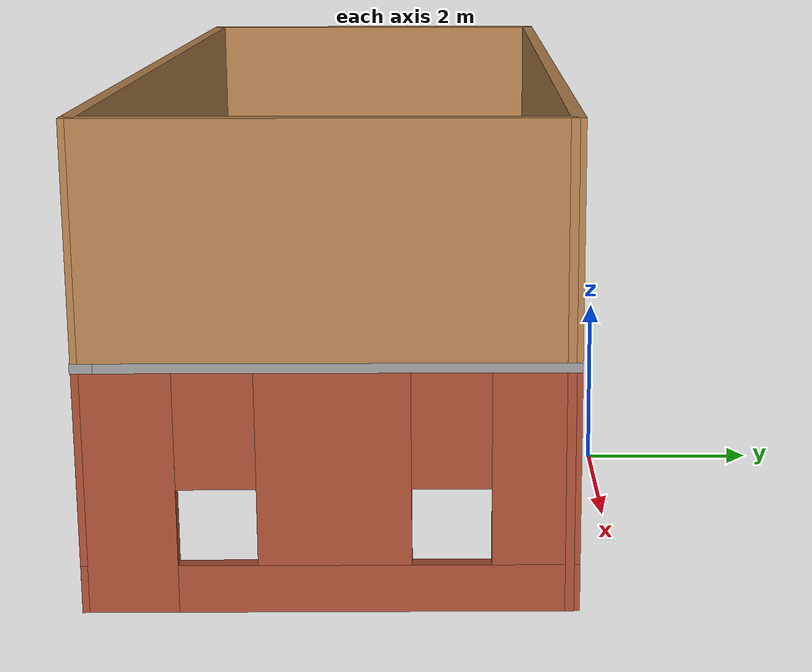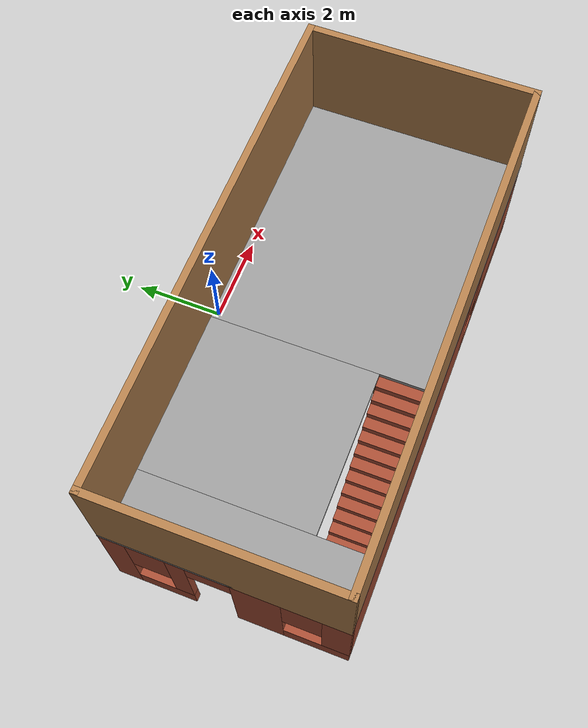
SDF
<?xml version='1.0'?>
<sdf version='1.6'>
  <model name='house'>
    <pose frame=''>-0.799965 -2.73753 0 0 -0 0</pose>
    <link name='Floor_1'>
      <pose frame=''>0 -0.232465 2.5 0 -0 0</pose>
      <visual name='Floor_1_Visual_0'>
        <pose frame=''>-4.72253 0 0.05 0 -0 0</pose>
        <geometry>
          <box>
            <size>1.425 5.01014 0.1</size>
          </box>
        </geometry>
        <material>
          <script>
            <uri>file://media/materials/scripts/gazebo.material</uri>
            <name>Gazebo/Grey</name>
          </script>
          <ambient>1 1 1 1</ambient>
        </material>
        <meta>
          <layer>1</layer>
        </meta>
      </visual>
      <collision name='Floor_1_Collision_0'>
        <geometry>
          <box>
            <size>1.425 5.01014 0.1</size>
          </box>
        </geometry>
        <pose frame=''>-4.72253 0 0.05 0 -0 0</pose>
      </collision>
      <visual name='Floor_1_Visual_1'>
        <pose frame=''>0.7125 -2.39254 0.05 0 -0 0</pose>
        <geometry>
          <box>
            <size>9.44507 0.22507 0.1</size>
          </box>
        </geometry>
        <material>
          <script>
            <uri>file://media/materials/scripts/gazebo.material</uri>
            <name>Gazebo/Grey</name>
          </script>
          <ambient>1 1 1 1</ambient>
        </material>
        <meta>
          <layer>1</layer>
        </meta>
      </visual>
      <collision name='Floor_1_Collision_1'>
        <geometry>
          <box>
            <size>9.44507 0.22507 0.1</size>
          </box>
        </geometry>
        <pose frame=''>0.7125 -2.39254 0.05 0 -0 0</pose>
      </collision>
      <visual name='Floor_1_Visual_2'>
        <pose frame=''>2.4625 0.112535 0.05 0 -0 0</pose>
        <geometry>
          <box>
            <size>5.94507 4.78507 0.1</size>
          </box>
        </geometry>
        <material>
          <script>
            <uri>file://media/materials/scripts/gazebo.material</uri>
            <name>Gazebo/Grey</name>
          </script>
          <ambient>1 1 1 1</ambient>
        </material>
        <meta>
          <layer>1</layer>
        </meta>
      </visual>
      <collision name='Floor_1_Collision_2'>
        <geometry>
          <box>
            <size>5.94507 4.78507 0.1</size>
          </box>
        </geometry>
        <pose frame=''>2.4625 0.112535 0.05 0 -0 0</pose>
      </collision>
      <visual name='Floor_1_Visual_3'>
        <pose frame=''>-2.26003 0.612535 0.05 0 -0 0</pose>
        <geometry>
          <box>
            <size>3.5 3.78507 0.1</size>
          </box>
        </geometry>
        <material>
          <script>
            <uri>file://media/materials/scripts/gazebo.material</uri>
            <name>Gazebo/Grey</name>
          </script>
          <ambient>1 1 1 1</ambient>
        </material>
        <meta>
          <layer>1</layer>
        </meta>
      </visual>
      <collision name='Floor_1_Collision_3'>
        <geometry>
          <box>
            <size>3.5 3.78507 0.1</size>
          </box>
        </geometry>
        <pose frame=''>-2.26003 0.612535 0.05 0 -0 0</pose>
      </collision>
    </link>
    <link name='Stairs_1'>
      <visual name='Stairs_1_Visual_0'>
        <pose frame=''>-3.89337 -2.01247 0.083333 0 -0 1.5708</pose>
        <geometry>
          <box>
            <size>1 0.233333 0.166667</size>
          </box>
        </geometry>
        <material>
          <script>
            <uri>file://media/materials/scripts/gazebo.material</uri>
            <name>Gazebo/Bricks</name>
          </script>
          <ambient>1 1 1 1</ambient>
        </material>
        <meta>
          <layer>0</layer>
        </meta>
      </visual>
      <collision name='Stairs_1_Collision_0'>
        <geometry>
          <box>
            <size>1 0.233333 0.166667</size>
          </box>
        </geometry>
        <pose frame=''>-3.89337 -2.01247 0.083333 0 -0 1.5708</pose>
      </collision>
      <visual name='Stairs_1_Visual_1'>
        <pose frame=''>-3.66004 -2.01247 0.25 0 -0 1.5708</pose>
        <geometry>
          <box>
            <size>1 0.233333 0.166667</size>
          </box>
        </geometry>
        <material>
          <script>
            <uri>file://media/materials/scripts/gazebo.material</uri>
            <name>Gazebo/Bricks</name>
          </script>
          <ambient>1 1 1 1</ambient>
        </material>
        <meta>
          <layer>0</layer>
        </meta>
      </visual>
      <collision name='Stairs_1_Collision_1'>
        <geometry>
          <box>
            <size>1 0.233333 0.166667</size>
          </box>
        </geometry>
        <pose frame=''>-3.66004 -2.01247 0.25 0 -0 1.5708</pose>
      </collision>
      <visual name='Stairs_1_Visual_2'>
        <pose frame=''>-3.4267 -2.01247 0.416667 0 -0 1.5708</pose>
        <geometry>
          <box>
            <size>1 0.233333 0.166667</size>
          </box>
        </geometry>
        <material>
          <script>
            <uri>file://media/materials/scripts/gazebo.material</uri>
            <name>Gazebo/Bricks</name>
          </script>
          <ambient>1 1 1 1</ambient>
        </material>
        <meta>
          <layer>0</layer>
        </meta>
      </visual>
      <collision name='Stairs_1_Collision_2'>
        <geometry>
          <box>
            <size>1 0.233333 0.166667</size>
          </box>
        </geometry>
        <pose frame=''>-3.4267 -2.01247 0.416667 0 -0 1.5708</pose>
      </collision>
      <visual name='Stairs_1_Visual_3'>
        <pose frame=''>-3.19337 -2.01247 0.583333 0 -0 1.5708</pose>
        <geometry>
          <box>
            <size>1 0.233333 0.166667</size>
          </box>
        </geometry>
        <material>
          <script>
            <uri>file://media/materials/scripts/gazebo.material</uri>
            <name>Gazebo/Bricks</name>
          </script>
          <ambient>1 1 1 1</ambient>
        </material>
        <meta>
          <layer>0</layer>
        </meta>
      </visual>
      <collision name='Stairs_1_Collision_3'>
        <geometry>
          <box>
            <size>1 0.233333 0.166667</size>
          </box>
        </geometry>
        <pose frame=''>-3.19337 -2.01247 0.583333 0 -0 1.5708</pose>
      </collision>
      <visual name='Stairs_1_Visual_4'>
        <pose frame=''>-2.96003 -2.01247 0.75 0 -0 1.5708</pose>
        <geometry>
          <box>
            <size>1 0.233333 0.166667</size>
          </box>
        </geometry>
        <material>
          <script>
            <uri>file://media/materials/scripts/gazebo.material</uri>
            <name>Gazebo/Bricks</name>
          </script>
          <ambient>1 1 1 1</ambient>
        </material>
        <meta>
          <layer>0</layer>
        </meta>
      </visual>
      <collision name='Stairs_1_Collision_4'>
        <geometry>
          <box>
            <size>1 0.233333 0.166667</size>
          </box>
        </geometry>
        <pose frame=''>-2.96003 -2.01247 0.75 0 -0 1.5708</pose>
      </collision>
      <visual name='Stairs_1_Visual_5'>
        <pose frame=''>-2.7267 -2.01247 0.916667 0 -0 1.5708</pose>
        <geometry>
          <box>
            <size>1 0.233333 0.166667</size>
          </box>
        </geometry>
        <material>
          <script>
            <uri>file://media/materials/scripts/gazebo.material</uri>
            <name>Gazebo/Bricks</name>
          </script>
          <ambient>1 1 1 1</ambient>
        </material>
        <meta>
          <layer>0</layer>
        </meta>
      </visual>
      <collision name='Stairs_1_Collision_5'>
        <geometry>
          <box>
            <size>1 0.233333 0.166667</size>
          </box>
        </geometry>
        <pose frame=''>-2.7267 -2.01247 0.916667 0 -0 1.5708</pose>
      </collision>
      <visual name='Stairs_1_Visual_6'>
        <pose frame=''>-2.49337 -2.01247 1.08333 0 -0 1.5708</pose>
        <geometry>
          <box>
            <size>1 0.233333 0.166667</size>
          </box>
        </geometry>
        <material>
          <script>
            <uri>file://media/materials/scripts/gazebo.material</uri>
            <name>Gazebo/Bricks</name>
          </script>
          <ambient>1 1 1 1</ambient>
        </material>
        <meta>
          <layer>0</layer>
        </meta>
      </visual>
      <collision name='Stairs_1_Collision_6'>
        <geometry>
          <box>
            <size>1 0.233333 0.166667</size>
          </box>
        </geometry>
        <pose frame=''>-2.49337 -2.01247 1.08333 0 -0 1.5708</pose>
      </collision>
      <visual name='Stairs_1_Visual_7'>
        <pose frame=''>-2.26003 -2.01247 1.25 0 -0 1.5708</pose>
        <geometry>
          <box>
            <size>1 0.233333 0.166667</size>
          </box>
        </geometry>
        <material>
          <script>
            <uri>file://media/materials/scripts/gazebo.material</uri>
            <name>Gazebo/Bricks</name>
          </script>
          <ambient>1 1 1 1</ambient>
        </material>
        <meta>
          <layer>0</layer>
        </meta>
      </visual>
      <collision name='Stairs_1_Collision_7'>
        <geometry>
          <box>
            <size>1 0.233333 0.166667</size>
          </box>
        </geometry>
        <pose frame=''>-2.26003 -2.01247 1.25 0 -0 1.5708</pose>
      </collision>
      <visual name='Stairs_1_Visual_8'>
        <pose frame=''>-2.0267 -2.01247 1.41667 0 -0 1.5708</pose>
        <geometry>
          <box>
            <size>1 0.233333 0.166667</size>
          </box>
        </geometry>
        <material>
          <script>
            <uri>file://media/materials/scripts/gazebo.material</uri>
            <name>Gazebo/Bricks</name>
          </script>
          <ambient>1 1 1 1</ambient>
        </material>
        <meta>
          <layer>0</layer>
        </meta>
      </visual>
      <collision name='Stairs_1_Collision_8'>
        <geometry>
          <box>
            <size>1 0.233333 0.166667</size>
          </box>
        </geometry>
        <pose frame=''>-2.0267 -2.01247 1.41667 0 -0 1.5708</pose>
      </collision>
      <visual name='Stairs_1_Visual_9'>
        <pose frame=''>-1.79337 -2.01247 1.58333 0 -0 1.5708</pose>
        <geometry>
          <box>
            <size>1 0.233333 0.166667</size>
          </box>
        </geometry>
        <material>
          <script>
            <uri>file://media/materials/scripts/gazebo.material</uri>
            <name>Gazebo/Bricks</name>
          </script>
          <ambient>1 1 1 1</ambient>
        </material>
        <meta>
          <layer>0</layer>
        </meta>
      </visual>
      <collision name='Stairs_1_Collision_9'>
        <geometry>
          <box>
            <size>1 0.233333 0.166667</size>
          </box>
        </geometry>
        <pose frame=''>-1.79337 -2.01247 1.58333 0 -0 1.5708</pose>
      </collision>
      <visual name='Stairs_1_Visual_10'>
        <pose frame=''>-1.56004 -2.01247 1.75 0 -0 1.5708</pose>
        <geometry>
          <box>
            <size>1 0.233333 0.166667</size>
          </box>
        </geometry>
        <material>
          <script>
            <uri>file://media/materials/scripts/gazebo.material</uri>
            <name>Gazebo/Bricks</name>
          </script>
          <ambient>1 1 1 1</ambient>
        </material>
        <meta>
          <layer>0</layer>
        </meta>
      </visual>
      <collision name='Stairs_1_Collision_10'>
        <geometry>
          <box>
            <size>1 0.233333 0.166667</size>
          </box>
        </geometry>
        <pose frame=''>-1.56004 -2.01247 1.75 0 -0 1.5708</pose>
      </collision>
      <visual name='Stairs_1_Visual_11'>
        <pose frame=''>-1.3267 -2.01247 1.91667 0 -0 1.5708</pose>
        <geometry>
          <box>
            <size>1 0.233333 0.166667</size>
          </box>
        </geometry>
        <material>
          <script>
            <uri>file://media/materials/scripts/gazebo.material</uri>
            <name>Gazebo/Bricks</name>
          </script>
          <ambient>1 1 1 1</ambient>
        </material>
        <meta>
          <layer>0</layer>
        </meta>
      </visual>
      <collision name='Stairs_1_Collision_11'>
        <geometry>
          <box>
            <size>1 0.233333 0.166667</size>
          </box>
        </geometry>
        <pose frame=''>-1.3267 -2.01247 1.91667 0 -0 1.5708</pose>
      </collision>
      <visual name='Stairs_1_Visual_12'>
        <pose frame=''>-1.09337 -2.01247 2.08333 0 -0 1.5708</pose>
        <geometry>
          <box>
            <size>1 0.233333 0.166667</size>
          </box>
        </geometry>
        <material>
          <script>
            <uri>file://media/materials/scripts/gazebo.material</uri>
            <name>Gazebo/Bricks</name>
          </script>
          <ambient>1 1 1 1</ambient>
        </material>
        <meta>
          <layer>0</layer>
        </meta>
      </visual>
      <collision name='Stairs_1_Collision_12'>
        <geometry>
          <box>
            <size>1 0.233333 0.166667</size>
          </box>
        </geometry>
        <pose frame=''>-1.09337 -2.01247 2.08333 0 -0 1.5708</pose>
      </collision>
      <visual name='Stairs_1_Visual_13'>
        <pose frame=''>-0.860035 -2.01247 2.25 0 -0 1.5708</pose>
        <geometry>
          <box>
            <size>1 0.233333 0.166667</size>
          </box>
        </geometry>
        <material>
          <script>
            <uri>file://media/materials/scripts/gazebo.material</uri>
            <name>Gazebo/Bricks</name>
          </script>
          <ambient>1 1 1 1</ambient>
        </material>
        <meta>
          <layer>0</layer>
        </meta>
      </visual>
      <collision name='Stairs_1_Collision_13'>
        <geometry>
          <box>
            <size>1 0.233333 0.166667</size>
          </box>
        </geometry>
        <pose frame=''>-0.860035 -2.01247 2.25 0 -0 1.5708</pose>
      </collision>
      <visual name='Stairs_1_Visual_14'>
        <pose frame=''>-0.626701 -2.01247 2.41667 0 -0 1.5708</pose>
        <geometry>
          <box>
            <size>1 0.233333 0.166667</size>
          </box>
        </geometry>
        <material>
          <script>
            <uri>file://media/materials/scripts/gazebo.material</uri>
            <name>Gazebo/Bricks</name>
          </script>
          <ambient>1 1 1 1</ambient>
        </material>
        <meta>
          <layer>0</layer>
        </meta>
      </visual>
      <collision name='Stairs_1_Collision_14'>
        <geometry>
          <box>
            <size>1 0.233333 0.166667</size>
          </box>
        </geometry>
        <pose frame=''>-0.626701 -2.01247 2.41667 0 -0 1.5708</pose>
      </collision>
    </link>
    <link name='Wall_17'>
      <collision name='Wall_17_Collision'>
        <geometry>
          <box>
            <size>5 0.15 2.5</size>
          </box>
        </geometry>
        <pose frame=''>0 0 1.25 0 -0 0</pose>
      </collision>
      <visual name='Wall_17_Visual'>
        <pose frame=''>0 0 1.25 0 -0 0</pose>
        <geometry>
          <box>
            <size>5 0.15 2.5</size>
          </box>
        </geometry>
        <material>
          <script>
            <uri>file://media/materials/scripts/gazebo.material</uri>
            <name>Gazebo/Wood</name>
          </script>
          <ambient>1 1 1 1</ambient>
        </material>
        <meta>
          <layer>1</layer>
        </meta>
      </visual>
      <pose frame=''>-5.36003 -0.237465 2.5 0 -0 -1.5708</pose>
    </link>
    <link name='Wall_18'>
      <collision name='Wall_18_Collision'>
        <geometry>
          <box>
            <size>10.86 0.15 2.5</size>
          </box>
        </geometry>
        <pose frame=''>0 0 1.25 0 -0 0</pose>
      </collision>
      <visual name='Wall_18_Visual'>
        <pose frame=''>0 0 1.25 0 -0 0</pose>
        <geometry>
          <box>
            <size>10.86 0.15 2.5</size>
          </box>
        </geometry>
        <material>
          <script>
            <uri>file://media/materials/scripts/gazebo.material</uri>
            <name>Gazebo/Wood</name>
          </script>
          <ambient>1 1 1 1</ambient>
        </material>
        <meta>
          <layer>1</layer>
        </meta>
      </visual>
      <pose frame=''>0.004965 -2.65747 2.5 0 -0 0.000934</pose>
    </link>
    <link name='Wall_19'>
      <collision name='Wall_19_Collision'>
        <geometry>
          <box>
            <size>5 0.15 2.5</size>
          </box>
        </geometry>
        <pose frame=''>0 0 1.25 0 -0 0</pose>
      </collision>
      <visual name='Wall_19_Visual'>
        <pose frame=''>0 0 1.25 0 -0 0</pose>
        <geometry>
          <box>
            <size>5 0.15 2.5</size>
          </box>
        </geometry>
        <material>
          <script>
            <uri>file://media/materials/scripts/gazebo.material</uri>
            <name>Gazebo/Wood</name>
          </script>
          <ambient>1 1 1 1</ambient>
        </material>
        <meta>
          <layer>1</layer>
        </meta>
      </visual>
      <pose frame=''>5.35996 -0.227465 2.5 0 -0 1.5708</pose>
    </link>
    <link name='Wall_2'>
      <pose frame=''>-5.36003 -0.237465 0 0 -0 -1.5708</pose>
      <visual name='Wall_2_Visual_0'>
        <pose frame=''>-2.2325 0 1.25 0 -0 0</pose>
        <geometry>
          <box>
            <size>0.535 0.15 2.5</size>
          </box>
        </geometry>
        <material>
          <script>
            <uri>file://media/materials/scripts/gazebo.material</uri>
            <name>Gazebo/Bricks</name>
          </script>
          <ambient>1 1 1 1</ambient>
        </material>
        <meta>
          <layer>0</layer>
        </meta>
      </visual>
      <collision name='Wall_2_Collision_0'>
        <geometry>
          <box>
            <size>0.535 0.15 2.5</size>
          </box>
        </geometry>
        <pose frame=''>-2.2325 0 1.25 0 -0 0</pose>
      </collision>
      <visual name='Wall_2_Visual_1'>
        <pose frame=''>0.63 0 1.25 0 -0 0</pose>
        <geometry>
          <box>
            <size>0.99 0.15 2.5</size>
          </box>
        </geometry>
        <material>
          <script>
            <uri>file://media/materials/scripts/gazebo.material</uri>
            <name>Gazebo/Bricks</name>
          </script>
          <ambient>1 1 1 1</ambient>
        </material>
        <meta>
          <layer>0</layer>
        </meta>
      </visual>
      <collision name='Wall_2_Collision_1'>
        <geometry>
          <box>
            <size>0.99 0.15 2.5</size>
          </box>
        </geometry>
        <pose frame=''>0.63 0 1.25 0 -0 0</pose>
      </collision>
      <visual name='Wall_2_Visual_2'>
        <pose frame=''>-1.365 0 0.25 0 -0 0</pose>
        <geometry>
          <box>
            <size>1.2 0.15 0.5</size>
          </box>
        </geometry>
        <material>
          <script>
            <uri>file://media/materials/scripts/gazebo.material</uri>
            <name>Gazebo/Bricks</name>
          </script>
          <ambient>1 1 1 1</ambient>
        </material>
        <meta>
          <layer>0</layer>
        </meta>
      </visual>
      <collision name='Wall_2_Collision_2'>
        <geometry>
          <box>
            <size>1.2 0.15 0.5</size>
          </box>
        </geometry>
        <pose frame=''>-1.365 0 0.25 0 -0 0</pose>
      </collision>
      <visual name='Wall_2_Visual_3'>
        <pose frame=''>1.8125 0 0.25 0 -0 0</pose>
        <geometry>
          <box>
            <size>1.375 0.15 0.5</size>
          </box>
        </geometry>
        <material>
          <script>
            <uri>file://media/materials/scripts/gazebo.material</uri>
            <name>Gazebo/Bricks</name>
          </script>
          <ambient>1 1 1 1</ambient>
        </material>
        <meta>
          <layer>0</layer>
        </meta>
      </visual>
      <collision name='Wall_2_Collision_3'>
        <geometry>
          <box>
            <size>1.375 0.15 0.5</size>
          </box>
        </geometry>
        <pose frame=''>1.8125 0 0.25 0 -0 0</pose>
      </collision>
      <visual name='Wall_2_Visual_4'>
        <pose frame=''>-0.965 0 1.5 0 -0 0</pose>
        <geometry>
          <box>
            <size>0.4 0.15 2</size>
          </box>
        </geometry>
        <material>
          <script>
            <uri>file://media/materials/scripts/gazebo.material</uri>
            <name>Gazebo/Bricks</name>
          </script>
          <ambient>1 1 1 1</ambient>
        </material>
        <meta>
          <layer>0</layer>
        </meta>
      </visual>
      <collision name='Wall_2_Collision_4'>
        <geometry>
          <box>
            <size>0.4 0.15 2</size>
          </box>
        </geometry>
        <pose frame=''>-0.965 0 1.5 0 -0 0</pose>
      </collision>
      <visual name='Wall_2_Visual_5'>
        <pose frame=''>-0.965 0 1.5 0 -0 0</pose>
        <geometry>
          <box>
            <size>0.4 0.15 2</size>
          </box>
        </geometry>
        <material>
          <script>
            <uri>file://media/materials/scripts/gazebo.material</uri>
            <name>Gazebo/Bricks</name>
          </script>
          <ambient>1 1 1 1</ambient>
        </material>
        <meta>
          <layer>0</layer>
        </meta>
      </visual>
      <collision name='Wall_2_Collision_5'>
        <geometry>
          <box>
            <size>0.4 0.15 2</size>
          </box>
        </geometry>
        <pose frame=''>-0.965 0 1.5 0 -0 0</pose>
      </collision>
      <visual name='Wall_2_Visual_6'>
        <pose frame=''>2.2125 0 1.5 0 -0 0</pose>
        <geometry>
          <box>
            <size>0.575 0.15 2</size>
          </box>
        </geometry>
        <material>
          <script>
            <uri>file://media/materials/scripts/gazebo.material</uri>
            <name>Gazebo/Bricks</name>
          </script>
          <ambient>1 1 1 1</ambient>
        </material>
        <meta>
          <layer>0</layer>
        </meta>
      </visual>
      <collision name='Wall_2_Collision_6'>
        <geometry>
          <box>
            <size>0.575 0.15 2</size>
          </box>
        </geometry>
        <pose frame=''>2.2125 0 1.5 0 -0 0</pose>
      </collision>
      <visual name='Wall_2_Visual_7'>
        <pose frame=''>-1.565 0 1.9 0 -0 0</pose>
        <geometry>
          <box>
            <size>0.8 0.15 1.2</size>
          </box>
        </geometry>
        <material>
          <script>
            <uri>file://media/materials/scripts/gazebo.material</uri>
            <name>Gazebo/Bricks</name>
          </script>
          <ambient>1 1 1 1</ambient>
        </material>
        <meta>
          <layer>0</layer>
        </meta>
      </visual>
      <collision name='Wall_2_Collision_7'>
        <geometry>
          <box>
            <size>0.8 0.15 1.2</size>
          </box>
        </geometry>
        <pose frame=''>-1.565 0 1.9 0 -0 0</pose>
      </collision>
      <visual name='Wall_2_Visual_8'>
        <pose frame=''>1.525 0 1.9 0 -0 0</pose>
        <geometry>
          <box>
            <size>0.8 0.15 1.2</size>
          </box>
        </geometry>
        <material>
          <script>
            <uri>file://media/materials/scripts/gazebo.material</uri>
            <name>Gazebo/Bricks</name>
          </script>
          <ambient>1 1 1 1</ambient>
        </material>
        <meta>
          <layer>0</layer>
        </meta>
      </visual>
      <collision name='Wall_2_Collision_8'>
        <geometry>
          <box>
            <size>0.8 0.15 1.2</size>
          </box>
        </geometry>
        <pose frame=''>1.525 0 1.9 0 -0 0</pose>
      </collision>
      <visual name='Wall_2_Visual_9'>
        <pose frame=''>-0.315 0 2.25 0 -0 0</pose>
        <geometry>
          <box>
            <size>0.9 0.15 0.5</size>
          </box>
        </geometry>
        <material>
          <script>
            <uri>file://media/materials/scripts/gazebo.material</uri>
            <name>Gazebo/Bricks</name>
          </script>
          <ambient>1 1 1 1</ambient>
        </material>
        <meta>
          <layer>0</layer>
        </meta>
      </visual>
      <collision name='Wall_2_Collision_9'>
        <geometry>
          <box>
            <size>0.9 0.15 0.5</size>
          </box>
        </geometry>
        <pose frame=''>-0.315 0 2.25 0 -0 0</pose>
      </collision>
      <visual name='Wall_2_Visual_10'>
        <pose frame=''>-0.315 0 2.25 0 -0 0</pose>
        <geometry>
          <box>
            <size>0.9 0.15 0.5</size>
          </box>
        </geometry>
        <material>
          <script>
            <uri>file://media/materials/scripts/gazebo.material</uri>
            <name>Gazebo/Bricks</name>
          </script>
          <ambient>1 1 1 1</ambient>
        </material>
        <meta>
          <layer>0</layer>
        </meta>
      </visual>
      <collision name='Wall_2_Collision_10'>
        <geometry>
          <box>
            <size>0.9 0.15 0.5</size>
          </box>
        </geometry>
        <pose frame=''>-0.315 0 2.25 0 -0 0</pose>
      </collision>
    </link>
    <link name='Wall_20'>
      <collision name='Wall_20_Collision'>
        <geometry>
          <box>
            <size>10.86 0.15 2.5</size>
          </box>
        </geometry>
        <pose frame=''>0 0 1.25 0 -0 0</pose>
      </collision>
      <visual name='Wall_20_Visual'>
        <pose frame=''>0 0 1.25 0 -0 0</pose>
        <geometry>
          <box>
            <size>10.86 0.15 2.5</size>
          </box>
        </geometry>
        <material>
          <script>
            <uri>file://media/materials/scripts/gazebo.material</uri>
            <name>Gazebo/Wood</name>
          </script>
          <ambient>1 1 1 1</ambient>
        </material>
        <meta>
          <layer>1</layer>
        </meta>
      </visual>
      <pose frame=''>0.004965 2.19253 2.5 0 -0 -3.14066</pose>
    </link>
    <link name='Wall_3'>
      <pose frame=''>0.004965 -2.65747 0 0 -0 0.000934</pose>
      <visual name='Wall_3_Visual_0'>
        <pose frame=''>-1.82497 0 1.25 0 -0 0</pose>
        <geometry>
          <box>
            <size>7.21006 0.15 2.5</size>
          </box>
        </geometry>
        <material>
          <script>
            <uri>file://media/materials/scripts/gazebo.material</uri>
            <name>Gazebo/Bricks</name>
          </script>
          <ambient>1 1 1 1</ambient>
        </material>
        <meta>
          <layer>0</layer>
        </meta>
      </visual>
      <collision name='Wall_3_Collision_0'>
        <geometry>
          <box>
            <size>7.21006 0.15 2.5</size>
          </box>
        </geometry>
        <pose frame=''>-1.82497 0 1.25 0 -0 0</pose>
      </collision>
      <visual name='Wall_3_Visual_1'>
        <pose frame=''>3.60503 0 0.25 0 -0 0</pose>
        <geometry>
          <box>
            <size>3.64995 0.15 0.5</size>
          </box>
        </geometry>
        <material>
          <script>
            <uri>file://media/materials/scripts/gazebo.material</uri>
            <name>Gazebo/Bricks</name>
          </script>
          <ambient>1 1 1 1</ambient>
        </material>
        <meta>
          <layer>0</layer>
        </meta>
      </visual>
      <collision name='Wall_3_Collision_1'>
        <geometry>
          <box>
            <size>3.64995 0.15 0.5</size>
          </box>
        </geometry>
        <pose frame=''>3.60503 0 0.25 0 -0 0</pose>
      </collision>
      <visual name='Wall_3_Visual_2'>
        <pose frame=''>4.00503 0 1.5 0 -0 0</pose>
        <geometry>
          <box>
            <size>2.84995 0.15 2</size>
          </box>
        </geometry>
        <material>
          <script>
            <uri>file://media/materials/scripts/gazebo.material</uri>
            <name>Gazebo/Bricks</name>
          </script>
          <ambient>1 1 1 1</ambient>
        </material>
        <meta>
          <layer>0</layer>
        </meta>
      </visual>
      <collision name='Wall_3_Collision_2'>
        <geometry>
          <box>
            <size>2.84995 0.15 2</size>
          </box>
        </geometry>
        <pose frame=''>4.00503 0 1.5 0 -0 0</pose>
      </collision>
      <visual name='Wall_3_Visual_3'>
        <pose frame=''>2.18006 0 1.9 0 -0 0</pose>
        <geometry>
          <box>
            <size>0.8 0.15 1.2</size>
          </box>
        </geometry>
        <material>
          <script>
            <uri>file://media/materials/scripts/gazebo.material</uri>
            <name>Gazebo/Bricks</name>
          </script>
          <ambient>1 1 1 1</ambient>
        </material>
        <meta>
          <layer>0</layer>
        </meta>
      </visual>
      <collision name='Wall_3_Collision_3'>
        <geometry>
          <box>
            <size>0.8 0.15 1.2</size>
          </box>
        </geometry>
        <pose frame=''>2.18006 0 1.9 0 -0 0</pose>
      </collision>
    </link>
    <link name='Wall_4'>
      <pose frame=''>5.35996 -0.227465 0 0 -0 1.5708</pose>
      <visual name='Wall_4_Visual_0'>
        <pose frame=''>-2.0125 0 1.25 0 -0 0</pose>
        <geometry>
          <box>
            <size>0.975 0.15 2.5</size>
          </box>
        </geometry>
        <material>
          <script>
            <uri>file://media/materials/scripts/gazebo.material</uri>
            <name>Gazebo/Bricks</name>
          </script>
          <ambient>1 1 1 1</ambient>
        </material>
        <meta>
          <layer>0</layer>
        </meta>
      </visual>
      <collision name='Wall_4_Collision_0'>
        <geometry>
          <box>
            <size>0.975 0.15 2.5</size>
          </box>
        </geometry>
        <pose frame=''>-2.0125 0 1.25 0 -0 0</pose>
      </collision>
      <visual name='Wall_4_Visual_1'>
        <pose frame=''>0.4875 0 0.25 0 -0 0</pose>
        <geometry>
          <box>
            <size>4.025 0.15 0.5</size>
          </box>
        </geometry>
        <material>
          <script>
            <uri>file://media/materials/scripts/gazebo.material</uri>
            <name>Gazebo/Bricks</name>
          </script>
          <ambient>1 1 1 1</ambient>
        </material>
        <meta>
          <layer>0</layer>
        </meta>
      </visual>
      <collision name='Wall_4_Collision_1'>
        <geometry>
          <box>
            <size>4.025 0.15 0.5</size>
          </box>
        </geometry>
        <pose frame=''>0.4875 0 0.25 0 -0 0</pose>
      </collision>
      <visual name='Wall_4_Visual_2'>
        <pose frame=''>0.045 0 1.5 0 -0 0</pose>
        <geometry>
          <box>
            <size>1.54 0.15 2</size>
          </box>
        </geometry>
        <material>
          <script>
            <uri>file://media/materials/scripts/gazebo.material</uri>
            <name>Gazebo/Bricks</name>
          </script>
          <ambient>1 1 1 1</ambient>
        </material>
        <meta>
          <layer>0</layer>
        </meta>
      </visual>
      <collision name='Wall_4_Collision_2'>
        <geometry>
          <box>
            <size>1.54 0.15 2</size>
          </box>
        </geometry>
        <pose frame=''>0.045 0 1.5 0 -0 0</pose>
      </collision>
      <visual name='Wall_4_Visual_3'>
        <pose frame=''>2.0575 0 1.5 0 -0 0</pose>
        <geometry>
          <box>
            <size>0.885 0.15 2</size>
          </box>
        </geometry>
        <material>
          <script>
            <uri>file://media/materials/scripts/gazebo.material</uri>
            <name>Gazebo/Bricks</name>
          </script>
          <ambient>1 1 1 1</ambient>
        </material>
        <meta>
          <layer>0</layer>
        </meta>
      </visual>
      <collision name='Wall_4_Collision_3'>
        <geometry>
          <box>
            <size>0.885 0.15 2</size>
          </box>
        </geometry>
        <pose frame=''>2.0575 0 1.5 0 -0 0</pose>
      </collision>
      <visual name='Wall_4_Visual_4'>
        <pose frame=''>-1.125 0 1.9 0 -0 0</pose>
        <geometry>
          <box>
            <size>0.8 0.15 1.2</size>
          </box>
        </geometry>
        <material>
          <script>
            <uri>file://media/materials/scripts/gazebo.material</uri>
            <name>Gazebo/Bricks</name>
          </script>
          <ambient>1 1 1 1</ambient>
        </material>
        <meta>
          <layer>0</layer>
        </meta>
      </visual>
      <collision name='Wall_4_Collision_4'>
        <geometry>
          <box>
            <size>0.8 0.15 1.2</size>
          </box>
        </geometry>
        <pose frame=''>-1.125 0 1.9 0 -0 0</pose>
      </collision>
      <visual name='Wall_4_Visual_5'>
        <pose frame=''>1.215 0 1.9 0 -0 0</pose>
        <geometry>
          <box>
            <size>0.8 0.15 1.2</size>
          </box>
        </geometry>
        <material>
          <script>
            <uri>file://media/materials/scripts/gazebo.material</uri>
            <name>Gazebo/Bricks</name>
          </script>
          <ambient>1 1 1 1</ambient>
        </material>
        <meta>
          <layer>0</layer>
        </meta>
      </visual>
      <collision name='Wall_4_Collision_5'>
        <geometry>
          <box>
            <size>0.8 0.15 1.2</size>
          </box>
        </geometry>
        <pose frame=''>1.215 0 1.9 0 -0 0</pose>
      </collision>
    </link>
    <link name='Wall_5'>
      <pose frame=''>0.004965 2.19253 0 0 -0 -3.14066</pose>
      <visual name='Wall_5_Visual_0'>
        <pose frame=''>-4.07571 0 1.25 0 -0 0</pose>
        <geometry>
          <box>
            <size>2.70859 0.15 2.5</size>
          </box>
        </geometry>
        <material>
          <script>
            <uri>file://media/materials/scripts/gazebo.material</uri>
            <name>Gazebo/Bricks</name>
          </script>
          <ambient>1 1 1 1</ambient>
        </material>
        <meta>
          <layer>0</layer>
        </meta>
      </visual>
      <collision name='Wall_5_Collision_0'>
        <geometry>
          <box>
            <size>2.70859 0.15 2.5</size>
          </box>
        </geometry>
        <pose frame=''>-4.07571 0 1.25 0 -0 0</pose>
      </collision>
      <visual name='Wall_5_Visual_1'>
        <pose frame=''>1.3543 0 0.25 0 -0 0</pose>
        <geometry>
          <box>
            <size>8.15141 0.15 0.5</size>
          </box>
        </geometry>
        <material>
          <script>
            <uri>file://media/materials/scripts/gazebo.material</uri>
            <name>Gazebo/Bricks</name>
          </script>
          <ambient>1 1 1 1</ambient>
        </material>
        <meta>
          <layer>0</layer>
        </meta>
      </visual>
      <collision name='Wall_5_Collision_1'>
        <geometry>
          <box>
            <size>8.15141 0.15 0.5</size>
          </box>
        </geometry>
        <pose frame=''>1.3543 0 0.25 0 -0 0</pose>
      </collision>
      <visual name='Wall_5_Visual_2'>
        <pose frame=''>1.7543 0 1.5 0 -0 0</pose>
        <geometry>
          <box>
            <size>7.35141 0.15 2</size>
          </box>
        </geometry>
        <material>
          <script>
            <uri>file://media/materials/scripts/gazebo.material</uri>
            <name>Gazebo/Bricks</name>
          </script>
          <ambient>1 1 1 1</ambient>
        </material>
        <meta>
          <layer>0</layer>
        </meta>
      </visual>
      <collision name='Wall_5_Collision_2'>
        <geometry>
          <box>
            <size>7.35141 0.15 2</size>
          </box>
        </geometry>
        <pose frame=''>1.7543 0 1.5 0 -0 0</pose>
      </collision>
      <visual name='Wall_5_Visual_3'>
        <pose frame=''>-2.32141 0 1.9 0 -0 0</pose>
        <geometry>
          <box>
            <size>0.8 0.15 1.2</size>
          </box>
        </geometry>
        <material>
          <script>
            <uri>file://media/materials/scripts/gazebo.material</uri>
            <name>Gazebo/Bricks</name>
          </script>
          <ambient>1 1 1 1</ambient>
        </material>
        <meta>
          <layer>0</layer>
        </meta>
      </visual>
      <collision name='Wall_5_Collision_3'>
        <geometry>
          <box>
            <size>0.8 0.15 1.2</size>
          </box>
        </geometry>
        <pose frame=''>-2.32141 0 1.9 0 -0 0</pose>
      </collision>
    </link>
    <link name='Wall_7'>
      <pose frame=''>-0.370035 -0.207465 0 0 -0 -1.5708</pose>
      <visual name='Wall_7_Visual_0'>
        <pose frame=''>-2.0925 0 1.25 0 -0 0</pose>
        <geometry>
          <box>
            <size>0.815 0.15 2.5</size>
          </box>
        </geometry>
        <material>
          <script>
            <uri>file://media/materials/scripts/gazebo.material</uri>
            <name>Gazebo/Wood</name>
          </script>
          <ambient>1 1 1 1</ambient>
        </material>
        <meta>
          <layer>0</layer>
        </meta>
      </visual>
      <collision name='Wall_7_Collision_0'>
        <geometry>
          <box>
            <size>0.815 0.15 2.5</size>
          </box>
        </geometry>
        <pose frame=''>-2.0925 0 1.25 0 -0 0</pose>
      </collision>
      <visual name='Wall_7_Visual_1'>
        <pose frame=''>-0.24 0 1.25 0 -0 0</pose>
        <geometry>
          <box>
            <size>1.09 0.15 2.5</size>
          </box>
        </geometry>
        <material>
          <script>
            <uri>file://media/materials/scripts/gazebo.material</uri>
            <name>Gazebo/Wood</name>
          </script>
          <ambient>1 1 1 1</ambient>
        </material>
        <meta>
          <layer>0</layer>
        </meta>
      </visual>
      <collision name='Wall_7_Collision_1'>
        <geometry>
          <box>
            <size>1.09 0.15 2.5</size>
          </box>
        </geometry>
        <pose frame=''>-0.24 0 1.25 0 -0 0</pose>
      </collision>
      <visual name='Wall_7_Visual_2'>
        <pose frame=''>1.8525 0 1.25 0 -0 0</pose>
        <geometry>
          <box>
            <size>1.295 0.15 2.5</size>
          </box>
        </geometry>
        <material>
          <script>
            <uri>file://media/materials/scripts/gazebo.material</uri>
            <name>Gazebo/Wood</name>
          </script>
          <ambient>1 1 1 1</ambient>
        </material>
        <meta>
          <layer>0</layer>
        </meta>
      </visual>
      <collision name='Wall_7_Collision_2'>
        <geometry>
          <box>
            <size>1.295 0.15 2.5</size>
          </box>
        </geometry>
        <pose frame=''>1.8525 0 1.25 0 -0 0</pose>
      </collision>
      <visual name='Wall_7_Visual_3'>
        <pose frame=''>-1.235 0 2.25 0 -0 0</pose>
        <geometry>
          <box>
            <size>0.9 0.15 0.5</size>
          </box>
        </geometry>
        <material>
          <script>
            <uri>file://media/materials/scripts/gazebo.material</uri>
            <name>Gazebo/Wood</name>
          </script>
          <ambient>1 1 1 1</ambient>
        </material>
        <meta>
          <layer>0</layer>
        </meta>
      </visual>
      <collision name='Wall_7_Collision_3'>
        <geometry>
          <box>
            <size>0.9 0.15 0.5</size>
          </box>
        </geometry>
        <pose frame=''>-1.235 0 2.25 0 -0 0</pose>
      </collision>
      <visual name='Wall_7_Visual_4'>
        <pose frame=''>0.755 0 2.25 0 -0 0</pose>
        <geometry>
          <box>
            <size>0.9 0.15 0.5</size>
          </box>
        </geometry>
        <material>
          <script>
            <uri>file://media/materials/scripts/gazebo.material</uri>
            <name>Gazebo/Wood</name>
          </script>
          <ambient>1 1 1 1</ambient>
        </material>
        <meta>
          <layer>0</layer>
        </meta>
      </visual>
      <collision name='Wall_7_Collision_4'>
        <geometry>
          <box>
            <size>0.9 0.15 0.5</size>
          </box>
        </geometry>
        <pose frame=''>0.755 0 2.25 0 -0 0</pose>
      </collision>
    </link>
    <link name='Wall_9'>
      <collision name='Wall_9_Collision'>
        <geometry>
          <box>
            <size>5.75 0.15 2.5</size>
          </box>
        </geometry>
        <pose frame=''>0 0 1.25 0 -0 0</pose>
      </collision>
      <visual name='Wall_9_Visual'>
        <pose frame=''>0 0 1.25 0 -0 0</pose>
        <geometry>
          <box>
            <size>5.75 0.15 2.5</size>
          </box>
        </geometry>
        <material>
          <script>
            <uri>file://media/materials/scripts/gazebo.material</uri>
            <name>Gazebo/Grey</name>
          </script>
          <ambient>0.333333 0.733333 0.976471 1</ambient>
        </material>
        <meta>
          <layer>0</layer>
        </meta>
      </visual>
      <pose frame=''>2.42997 -0.202465 0 0 -0 0</pose>
    </link>
    <static>1</static>
  </model>
</sdf>
